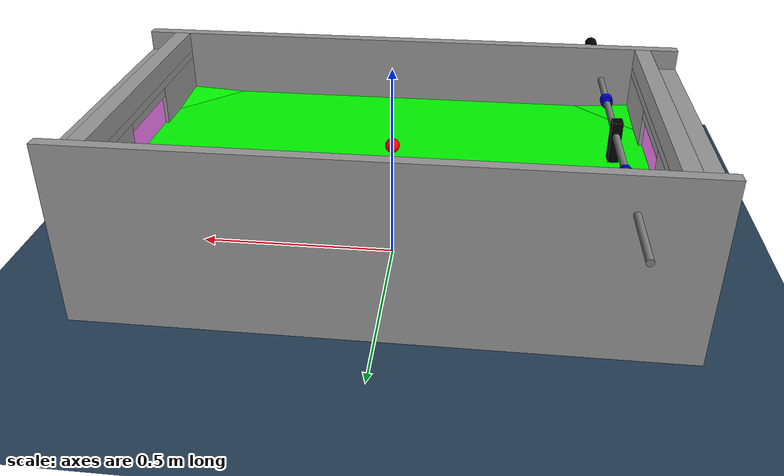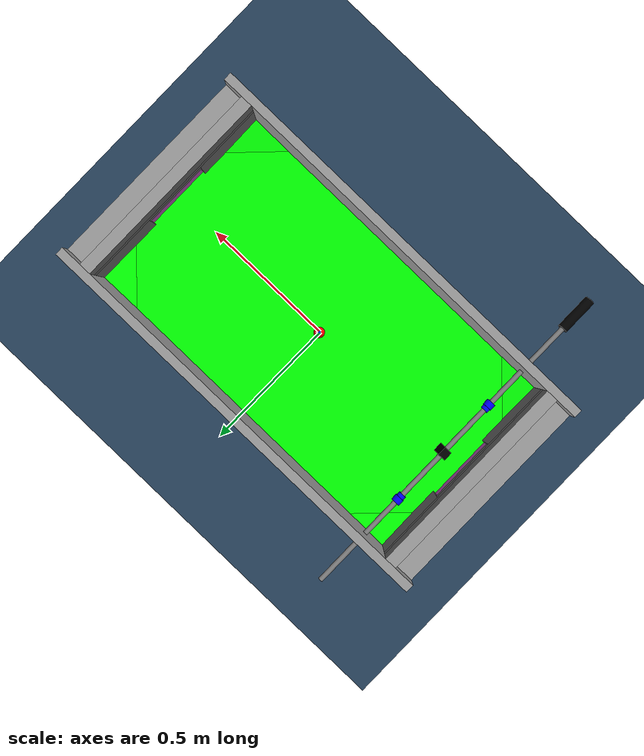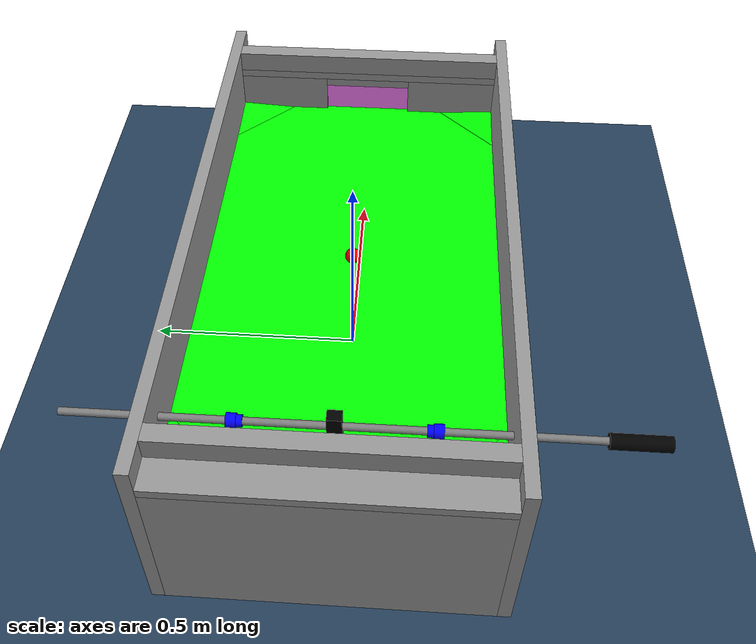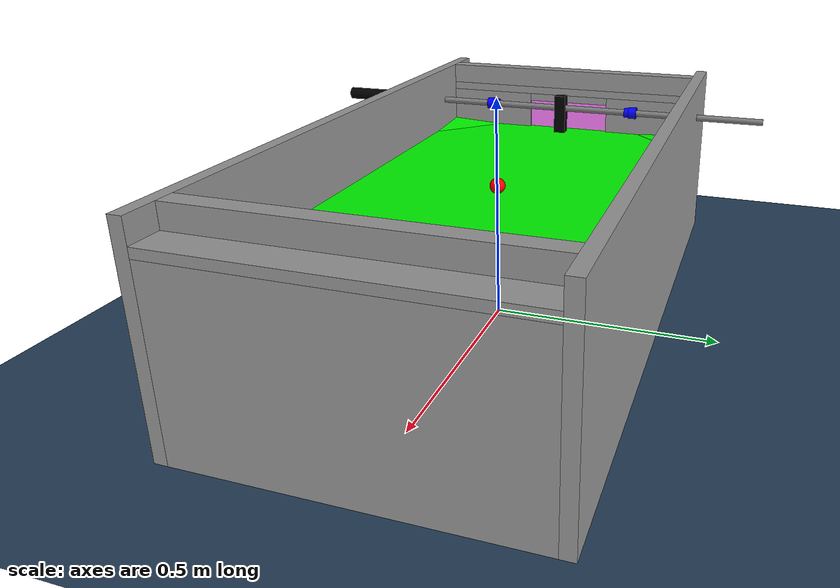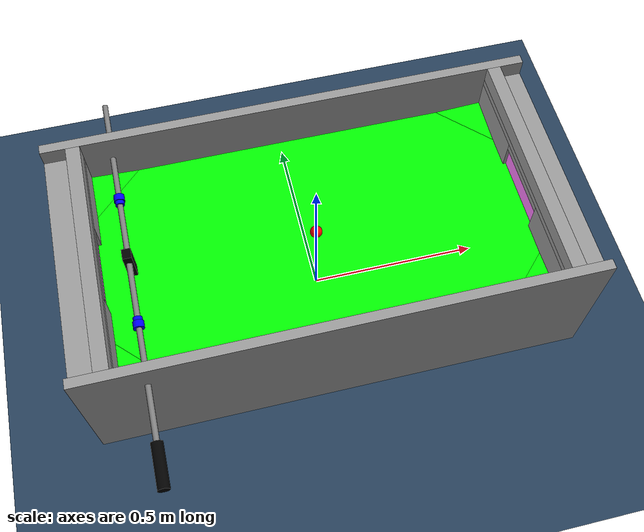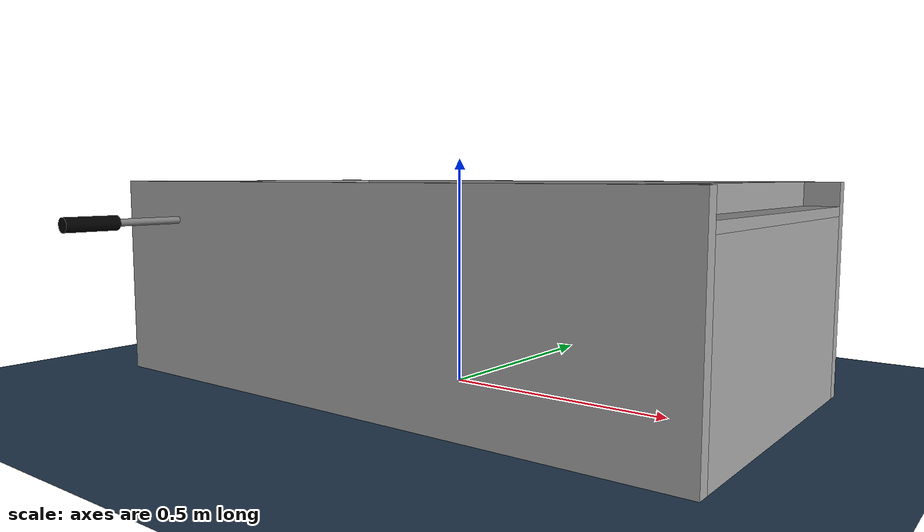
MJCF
<mujoco model="kicker">

    <option timestep="0.001" integrator="implicitfast"/>

    <default class="main">
        <joint armature="1" damping="1"/>
        <default class="plastic">
            <default class="figure">
                <geom condim="3" mass="0.046" solimp="0.4 0.45 0.01" solref="-200000 -20" friction="0.15 0.0005 0.0001"
                      contype="2" conaffinity="1" type="box" size="0.0125 0.015 0.05" rgba="0 0 0 1"/>
            </default>
            <default class="stopper">
                <geom condim="3" mass="0.046" solimp="0.4 0.45 0.01" solref="-200000 -20" friction="0.15 0.0005 0.0001"
                      contype="8" conaffinity="1" quat="1 1 0 0" type="cylinder" size="0.015 0.01" rgba="0 0 1 1"/>
            </default>
            <default class="ball">
                <geom condim="6" mass="0.021" solimp="0.2 0.3 0.01" solref="-125000 -85" friction="0.015 0.005 0.002"
                      contype="1" conaffinity="30" priority="1" type="sphere" size="0.0175" rgba="1 0 0 1"/>
            </default>
            <default class="field">
                <geom condim="6" solimp="0.4 0.45 0.01" solref="-200000 -20" friction="0.15 0.0005 0.0001"
                      rgba="0 1 0 1" conaffinity="1"/>
            </default>
            <default class="wall">
                <geom condim="6" solimp="0.4 0.45 0.01" solref="-200000 -20" friction="0.15 0.0005 0.0001"
                      rgba="0.6 0.6 0.6 1" contype="4" conaffinity="1"/>
            </default>
            <default class="handle">
                <geom priority="1" mass="0.104" type="cylinder" size="0.016 0.0595" conaffinity="0"
                      quat="1 1 0 0" rgba="0 0 0 1"/>
            </default>
        </default>
        <default class="metal">
            <geom priority="1" density="7700" condim="3" solref="-250000 -10" friction="0.005 0.00005 0.0001"
                  type="cylinder" size="0.008" rgba="0.5 0.5 0.5 1" contype="16" conaffinity="0"/>
        </default>
        <default class="slide_motor">
            <motor forcelimited="true" forcerange="-26 26" ctrllimited="true" ctrlrange="-1.0 1.0" gear="26"/>
        </default>
        <default class="hinge_motor">
            <motor forcelimited="true" forcerange="-7.4 7.4" ctrllimited="true" ctrlrange="-1.0 1.0" gear="750"/>
        </default>
    </default>

    <asset>
        <texture type="skybox" builtin="gradient" rgb1="0.3 0.5 0.7" rgb2="0 0 0" width="512" height="3072"/>
        <texture type="2d" name="groundplane" builtin="checker" mark="edge" rgb1="0.2 0.3 0.4" rgb2="0.1 0.2 0.3"
                 markrgb="0.8 0.8 0.8" width="300" height="300"/>
        <material name="groundplane" texture="groundplane" texuniform="true" texrepeat="5 5" reflectance="0.2"/>
    </asset>

    <visual>
        <headlight diffuse="0.6 0.6 0.6" ambient="0.3 0.3 0.3" specular="0 0 0"/>
        <rgba haze="0.15 0.25 0.35 1"/>
        <global azimuth="-130" elevation="-20"/>
    </visual>

    <worldbody>
        <light cutoff="100" diffuse="1 1 1" dir="0 0 -1" directional="true" pos="0 0 1"/>
        <geom name="floor" size="0 0 0.05" type="plane" material="groundplane"/>
        <camera name="table_view" pos="0 0 1.5" resolution="640 480" xyaxes="1 0 0 0 1 0"/>

        <!-- Table -->
        <body name="table" pos="0 0 0">
            <!-- Table Surface -->

            <body name="field" pos="0 0 0.28">
                <geom type="box" class="field" pos="0.5375 0.26375 -0.005"
                      size="0.075 0.0775 0.01" euler="3.5 -3.5 0"/>
                <geom type="box" class="field" pos="-0.5375 0.26375 -0.005"
                      size="0.075 0.0775 0.01" euler="3.5 3.5 0"/>
                <geom type="box" class="field" pos="-0.5375 -0.26375 -0.005"
                      size="0.075 0.0775 0.01" euler="-3.5 3.5 0"/>
                <geom type="box" class="field" pos="0.5375 -0.26375 -0.005"
                      size="0.075 0.0775 0.01" euler="-3.5 -3.5 0"/>
                <geom type="box" class="field" pos="0 0 -0.005" size="0.6085 0.34 0.01"/>
            </body>

            <body name="frame_top_black" pos="-0.7 0 0">
                <geom type="box" class="wall" pos="0 0 0.19" size="0.01 0.34 0.19"/>
                <geom type="box" class="wall" pos="0.081 0 0.425" size="0.02 0.34 0.025"/>
                <geom type="box" class="wall" pos="0.0455 0 0.39" size="0.0555 0.34 0.01"/>
            </body>

            <body name="frame_top_white" pos="0.7 0 0" quat="0 0 0 1">
                <geom type="box" class="wall" pos="0 0 0.19" size="0.01 0.34 0.19"/>
                <geom type="box" class="wall" pos="0.081 0 0.425" size="0.02 0.34 0.025"/>
                <geom type="box" class="wall" pos="0.0455 0 0.39" size="0.0555 0.34 0.01"/>
            </body>

            <body name="long_wall_left" pos="0 -0.354 0">
                <geom type="box" class="wall" pos="0 0 0.225" size="0.71 0.014 0.225"/>
            </body>

            <body name="long_wall_right" pos="0 0.354 0">
                <geom type="box" class="wall" pos="0 0 0.225" size="0.71 0.014 0.225"/>
            </body>

            <body name="short_wall_white" pos="0.608 -0.1 0.3305" quat="0 1 0 0">
                <geom type="box" class="wall" pos="0.001 0.125 0" size="0.01 0.115 0.05" />
                <geom type="box" class="wall" pos="0.001 -0.325 0" size="0.01 0.115 0.05" />
                <geom type="box" class="wall" pos="0.001 -0.1 -0.04" size="0.01 0.11 0.01" />
            </body>

            <body name="short_wall_black" pos="-0.608 0 0.3305" quat="0 0 1 0">
                <geom type="box" class="wall" pos="0.001 0.225 0" size="0.01 0.115 0.05" />
                <geom type="box" class="wall" pos="0.001 -0.225 0" size="0.01 0.115 0.05" />
                <geom type="box" class="wall" pos="0.001 0 -0.04" size="0.01 0.11 0.01" />
            </body>

            <body name="white_goal" pos="0.608 0 0.3305">
                <geom type="box" pos="0.07525 0 -0.06" size="0.0025 0.15 0.1"/>
                <geom type="box" pos="0.045 0.1475 -0.06" size="0.035 0.0025 0.1"/>
                <geom type="box" pos="0.045 -0.1475 -0.06" size="0.035 0.0025 0.1"/>
                <geom type="box" pos="0.045 0 0.0375" size="0.035 0.15 0.0025"/>
                <geom type="box" pos="0.045 0 -0.1575" size="0.035 0.15 0.0025"/>
                <geom type="box" pos="0.005 0 -0.10275" size="0.005 0.15 0.05725"/>
                <site name="white_goal_site" type="box" pos="0.04 0 -0.06" size="0.04 0.15 0.1" rgba="1 0.5 1 1"/>
            </body>

            <body name="black_goal" pos="-0.608 0 0.3305">
                <geom type="box" pos="-0.07525 0 -0.06" size="0.0025 0.15 0.1"/>
                <geom type="box" pos="-0.045 0.1475 -0.06" size="0.035 0.0025 0.1"/>
                <geom type="box" pos="-0.045 -0.1475 -0.06" size="0.035 0.0025 0.1"/>
                <geom type="box" pos="-0.045 0 0.0375" size="0.035 0.15 0.0025"/>
                <geom type="box" pos="-0.045 0 -0.1575" size="0.035 0.15 0.0025"/>
                <geom type="box" pos="-0.005 0 -0.10275" size="0.005 0.15 0.05725"/>
                <site name="black_goal_site" type="box" pos="-0.04 0 -0.06" size="0.04 0.15 0.1" rgba="1 0.5 1 1"/>
            </body>
        </body>

        <!-- Ball -->
        <!-- qpos: pos (3 dim), quat (4 dim) -->
        <!-- qvel: pos (3 dim), eul (3 dim) -->
        <body name="ball" pos="0 0 0.305">
            <freejoint/>
            <geom class="ball"/>
            <site name="ball_site" pos="0 0 0" size="0.0175" rgba="0 0 0 1"/>
        </body>

        <!-- Black Team -->
        <!-- qpos: lateral (1 dim), angular (1 dim) -->
        <!-- qvel: lateral (1 dim), angular (1 dim) -->
        <body name="b_g" pos="-0.522 0 0.3025">
            <joint name="b_g_slide" type="slide" range="-0.1271 0.1291" axis="0 1 0"/>
            <joint name="b_g_hinge" type="hinge" range="-90 90" axis="0 1 0" pos="0 0 0.0605"/>
            <geom class="handle" pos="0 -0.5775 0.0605"/>
            <geom class="metal" fromto="0 -0.635 0.0605 0 0.535 0.0605"/>
            <site name="b_g_site" type="cylinder" fromto="0 -0.635 0.0605 0 0.535 0.0605" size="0.008"/>

            <geom class="stopper" mass="0.02" pos="0 -0.183 0.0605" size="0.0125 0.006"/>
            <geom class="stopper" mass="0.02" pos="0 0.183 0.0605" size="0.0125 0.006"/>
            <geom class="stopper" pos="0 -0.199 0.0605"/>
            <geom class="stopper" pos="0 0.199 0.0605"/>

            <geom name="player1_1" class="figure" pos="0 0 0.0445"/>
            <site name="b_g_1" size="0.005" pos="0 0 0.05" rgba="0 0 1 1"/>
        </body>
    </worldbody>

    <actuator>
        <!-- black team actuators -->
        <motor group="1" name="b_g_slide_motor" class="slide_motor" joint="b_g_slide"/>
        <motor group="1" name="b_g_hinge_motor" class="hinge_motor" joint="b_g_hinge"/>
    </actuator>

    <sensor>
        <touch name="black_goal_sensor" site="black_goal_site"/> <!-- 1 dim -->
        <touch name="white_goal_sensor" site="white_goal_site"/> <!-- 1 dim -->
        <velocimeter name="ball_vel_sensor" site="ball_site"/> <!-- 3 dim -->
        <accelerometer name="ball_acc_sensor" site="ball_site"/> <!-- 3 dim -->
        <!-- black team: 4 dims-->
        <jointpos name="b_g_slide_pos_sensor" joint="b_g_slide"/> <!-- 1 dim -->
        <jointvel name="b_g_slide_vel_sensor" joint="b_g_slide"/> <!-- 1 dim -->
        <jointpos name="b_g_hinge_pos_sensor" joint="b_g_hinge"/> <!-- 1 dim -->
        <jointvel name="b_g_hinge_vel_sensor" joint="b_g_hinge"/> <!-- 1 dim -->
    </sensor>

    <keyframe>
        <key name="0" qvel="-1 0 0 0 0 0 0 0"/>
        <key name="1" qpos="0.57606 0.3 0.8075 0 0 0 0 0 0"/>
    </keyframe>
</mujoco>
